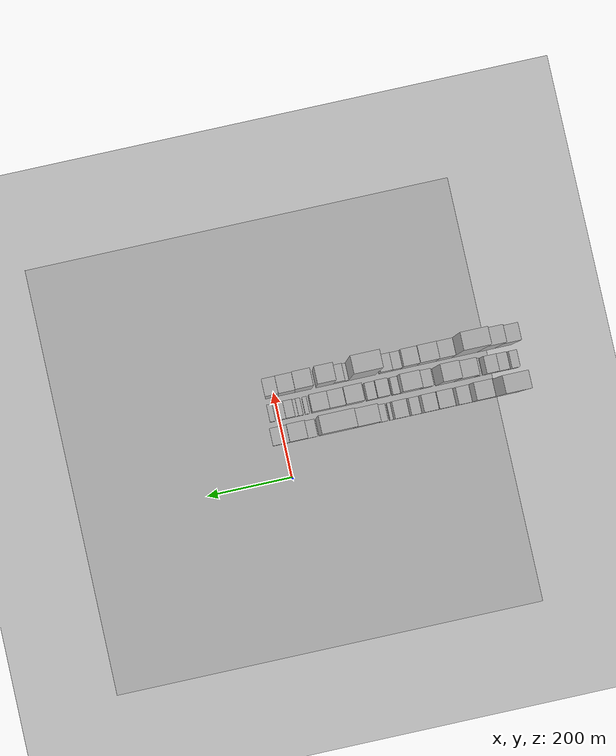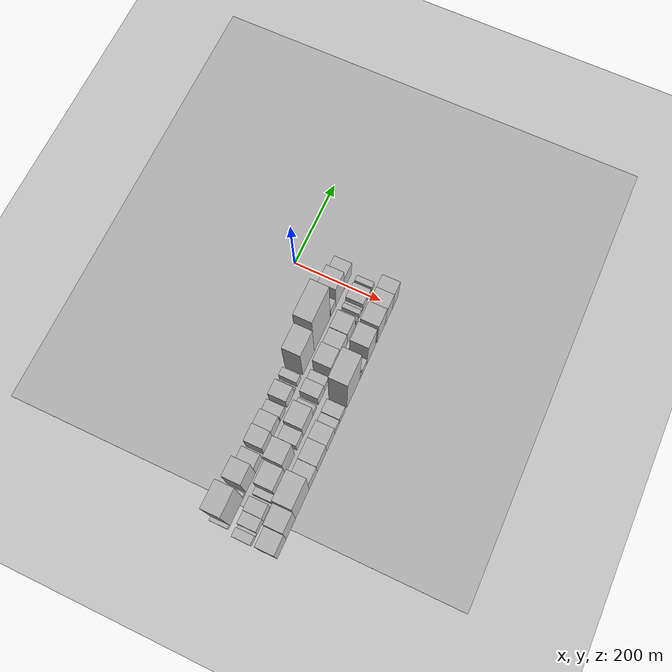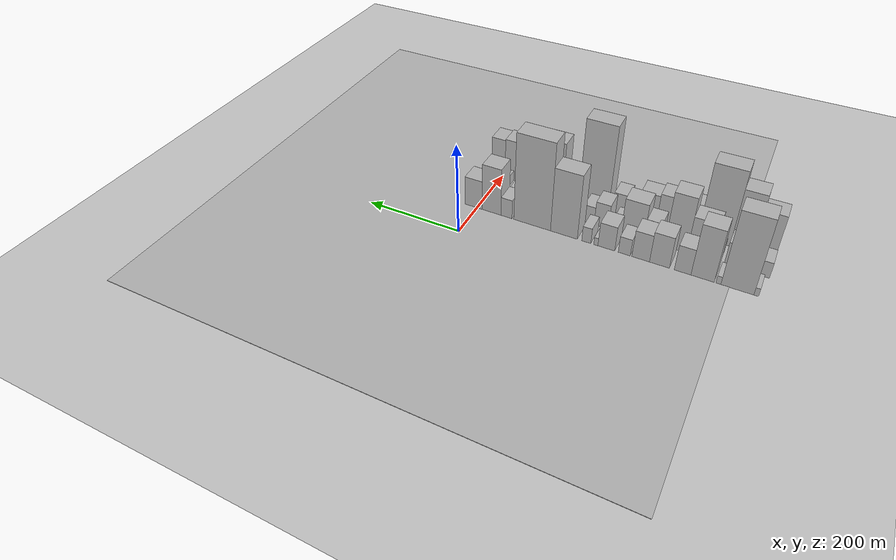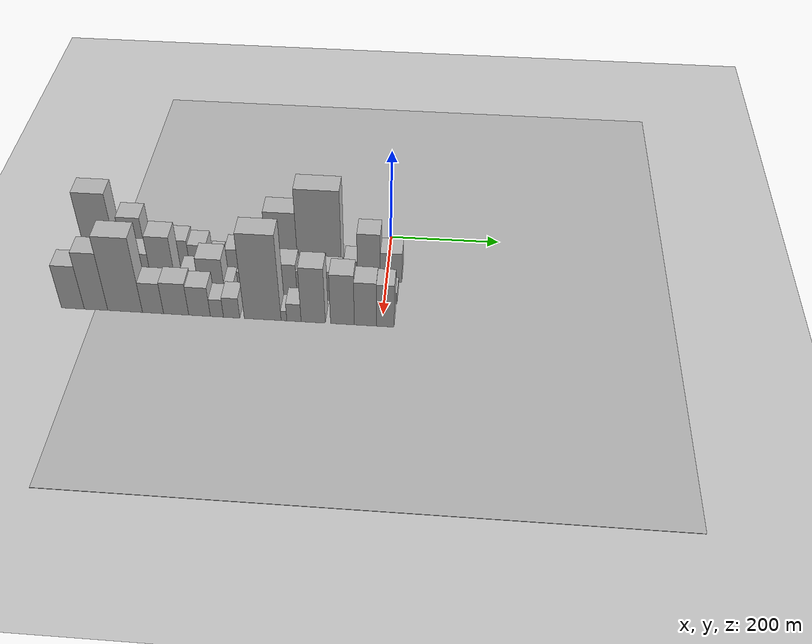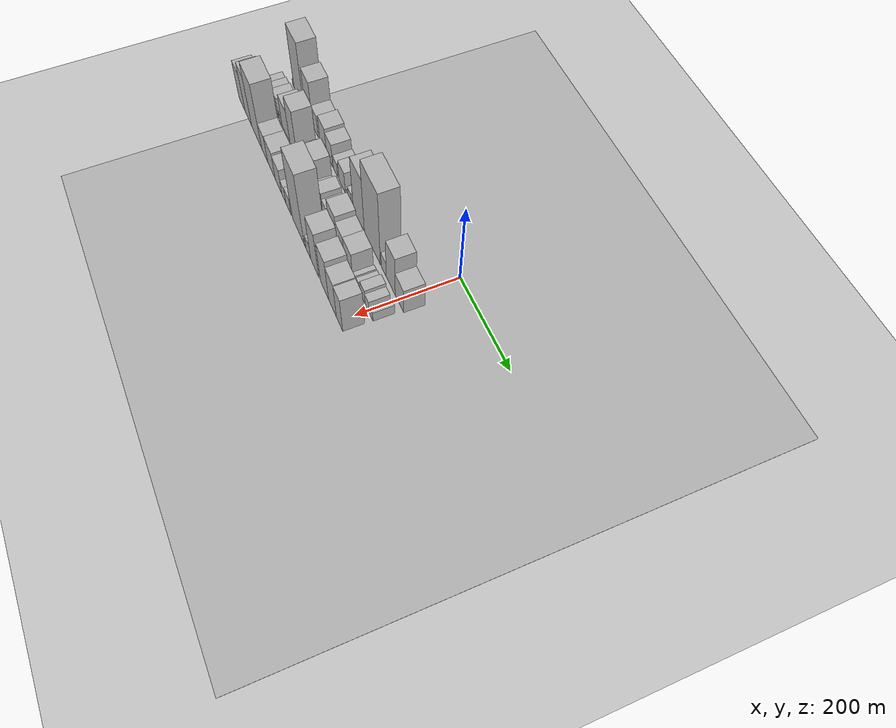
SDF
<sdf version="1.6">
 <world name="default">
  <include><name>ground_plane_1</name><uri>model://HANNAS_ground_plane</uri></include>
  <include>
   <name>ground_plane_2</name>
   <uri>model://HANNAS_ground_plane</uri>
   <pose>100 0 0  0 0 0</pose>
  </include>
  <model name="building_1">
   <static>1</static>
   <pose>100.0000 -546.8630 0 0.000000 0.000000 0.000000</pose>
   <link name="link">
    <pose>0 0 9.00 0 0 0</pose>
    <collision name="collision"><geometry><box><size>40.0000 8.2741 18.0000</size></box></geometry></collision>
    <visual name="visual">
     <cast_shadows>0</cast_shadows>
     <geometry><box><size>40.0000 8.2741 18.0000</size></box></geometry>
     <material>
      <script>
       <uri>model://HANNAS_wall/materials/scripts</uri>
       <uri>model://HANNAS_wall/materials/textures</uri>
       <name>vrc/HANNAS_wall</name>
      </script>
     </material>
    </visual>
   </link>
  </model>
  <model name="building_2">
   <static>1</static>
   <pose>100.0000 -513.9525 0 0.000000 0.000000 0.000000</pose>
   <link name="link">
    <pose>0 0 85.50 0 0 0</pose>
    <collision name="collision"><geometry><box><size>40.0000 57.5469 171.0000</size></box></geometry></collision>
    <visual name="visual">
     <cast_shadows>0</cast_shadows>
     <geometry><box><size>40.0000 57.5469 171.0000</size></box></geometry>
     <material>
      <script>
       <uri>model://HANNAS_wall/materials/scripts</uri>
       <uri>model://HANNAS_wall/materials/textures</uri>
       <name>vrc/HANNAS_wall</name>
      </script>
     </material>
    </visual>
   </link>
  </model>
  <model name="building_3">
   <static>1</static>
   <pose>100.0000 -480.7667 0 0.000000 0.000000 0.000000</pose>
   <link name="link">
    <pose>0 0 9.00 0 0 0</pose>
    <collision name="collision"><geometry><box><size>40.0000 8.8247 18.0000</size></box></geometry></collision>
    <visual name="visual">
     <cast_shadows>0</cast_shadows>
     <geometry><box><size>40.0000 8.8247 18.0000</size></box></geometry>
     <material>
      <script>
       <uri>model://HANNAS_wall/materials/scripts</uri>
       <uri>model://HANNAS_wall/materials/textures</uri>
       <name>vrc/HANNAS_wall</name>
      </script>
     </material>
    </visual>
   </link>
  </model>
  <model name="building_4">
   <static>1</static>
   <pose>100.0000 -452.3800 0 0.000000 0.000000 0.000000</pose>
   <link name="link">
    <pose>0 0 60.00 0 0 0</pose>
    <collision name="collision"><geometry><box><size>40.0000 41.9488 120.0000</size></box></geometry></collision>
    <visual name="visual">
     <cast_shadows>0</cast_shadows>
     <geometry><box><size>40.0000 41.9488 120.0000</size></box></geometry>
     <material>
      <script>
       <uri>model://HANNAS_wall/materials/scripts</uri>
       <uri>model://HANNAS_wall/materials/textures</uri>
       <name>vrc/HANNAS_wall</name>
      </script>
     </material>
    </visual>
   </link>
  </model>
  <model name="building_5">
   <static>1</static>
   <pose>100.0000 -416.2095 0 0.000000 0.000000 0.000000</pose>
   <link name="link">
    <pose>0 0 30.00 0 0 0</pose>
    <collision name="collision"><geometry><box><size>40.0000 30.3921 60.0000</size></box></geometry></collision>
    <visual name="visual">
     <cast_shadows>0</cast_shadows>
     <geometry><box><size>40.0000 30.3921 60.0000</size></box></geometry>
     <material>
      <script>
       <uri>model://HANNAS_wall/materials/scripts</uri>
       <uri>model://HANNAS_wall/materials/textures</uri>
       <name>vrc/HANNAS_wall</name>
      </script>
     </material>
    </visual>
   </link>
  </model>
  <model name="building_6">
   <static>1</static>
   <pose>100.0000 -373.3423 0 0.000000 0.000000 0.000000</pose>
   <link name="link">
    <pose>0 0 36.00 0 0 0</pose>
    <collision name="collision"><geometry><box><size>40.0000 37.3423 72.0000</size></box></geometry></collision>
    <visual name="visual">
     <cast_shadows>0</cast_shadows>
     <geometry><box><size>40.0000 37.3423 72.0000</size></box></geometry>
     <material>
      <script>
       <uri>model://HANNAS_wall/materials/scripts</uri>
       <uri>model://HANNAS_wall/materials/textures</uri>
       <name>vrc/HANNAS_wall</name>
      </script>
     </material>
    </visual>
   </link>
  </model>
  <model name="building_7">
   <static>1</static>
   <pose>100.0000 -337.8517 0 0.000000 0.000000 0.000000</pose>
   <link name="link">
    <pose>0 0 31.50 0 0 0</pose>
    <collision name="collision"><geometry><box><size>40.0000 33.6390 63.0000</size></box></geometry></collision>
    <visual name="visual">
     <cast_shadows>0</cast_shadows>
     <geometry><box><size>40.0000 33.6390 63.0000</size></box></geometry>
     <material>
      <script>
       <uri>model://HANNAS_wall/materials/scripts</uri>
       <uri>model://HANNAS_wall/materials/textures</uri>
       <name>vrc/HANNAS_wall</name>
      </script>
     </material>
    </visual>
   </link>
  </model>
  <model name="building_8">
   <static>1</static>
   <pose>100.0000 -306.4036 0 0.000000 0.000000 0.000000</pose>
   <link name="link">
    <pose>0 0 19.50 0 0 0</pose>
    <collision name="collision"><geometry><box><size>40.0000 23.2571 39.0000</size></box></geometry></collision>
    <visual name="visual">
     <cast_shadows>0</cast_shadows>
     <geometry><box><size>40.0000 23.2571 39.0000</size></box></geometry>
     <material>
      <script>
       <uri>model://HANNAS_wall/materials/scripts</uri>
       <uri>model://HANNAS_wall/materials/textures</uri>
       <name>vrc/HANNAS_wall</name>
      </script>
     </material>
    </visual>
   </link>
  </model>
  <model name="building_9">
   <static>1</static>
   <pose>100.0000 -271.2028 0 0.000000 0.000000 0.000000</pose>
   <link name="link">
    <pose>0 0 28.50 0 0 0</pose>
    <collision name="collision"><geometry><box><size>40.0000 33.1445 57.0000</size></box></geometry></collision>
    <visual name="visual">
     <cast_shadows>0</cast_shadows>
     <geometry><box><size>40.0000 33.1445 57.0000</size></box></geometry>
     <material>
      <script>
       <uri>model://HANNAS_wall/materials/scripts</uri>
       <uri>model://HANNAS_wall/materials/textures</uri>
       <name>vrc/HANNAS_wall</name>
      </script>
     </material>
    </visual>
   </link>
  </model>
  <model name="building_10">
   <static>1</static>
   <pose>100.0000 -250.5992 0 0.000000 0.000000 0.000000</pose>
   <link name="link">
    <pose>0 0 9.00 0 0 0</pose>
    <collision name="collision"><geometry><box><size>40.0000 8.0627 18.0000</size></box></geometry></collision>
    <visual name="visual">
     <cast_shadows>0</cast_shadows>
     <geometry><box><size>40.0000 8.0627 18.0000</size></box></geometry>
     <material>
      <script>
       <uri>model://HANNAS_wall/materials/scripts</uri>
       <uri>model://HANNAS_wall/materials/textures</uri>
       <name>vrc/HANNAS_wall</name>
      </script>
     </material>
    </visual>
   </link>
  </model>
  <model name="building_11">
   <static>1</static>
   <pose>100.0000 -231.4067 0 0.000000 0.000000 0.000000</pose>
   <link name="link">
    <pose>0 0 18.00 0 0 0</pose>
    <collision name="collision"><geometry><box><size>40.0000 18.3222 36.0000</size></box></geometry></collision>
    <visual name="visual">
     <cast_shadows>0</cast_shadows>
     <geometry><box><size>40.0000 18.3222 36.0000</size></box></geometry>
     <material>
      <script>
       <uri>model://HANNAS_wall/materials/scripts</uri>
       <uri>model://HANNAS_wall/materials/textures</uri>
       <name>vrc/HANNAS_wall</name>
      </script>
     </material>
    </visual>
   </link>
  </model>
  <model name="building_12">
   <static>1</static>
   <pose>100.0000 -185.6500 0 0.000000 0.000000 0.000000</pose>
   <link name="link">
    <pose>0 0 75.00 0 0 0</pose>
    <collision name="collision"><geometry><box><size>40.0000 55.1913 150.0000</size></box></geometry></collision>
    <visual name="visual">
     <cast_shadows>0</cast_shadows>
     <geometry><box><size>40.0000 55.1913 150.0000</size></box></geometry>
     <material>
      <script>
       <uri>model://HANNAS_wall/materials/scripts</uri>
       <uri>model://HANNAS_wall/materials/textures</uri>
       <name>vrc/HANNAS_wall</name>
      </script>
     </material>
    </visual>
   </link>
  </model>
  <model name="building_13">
   <static>1</static>
   <pose>100.0000 -119.1153 0 0.000000 0.000000 0.000000</pose>
   <link name="link">
    <pose>0 0 102.00 0 0 0</pose>
    <collision name="collision"><geometry><box><size>40.0000 77.8781 204.0000</size></box></geometry></collision>
    <visual name="visual">
     <cast_shadows>0</cast_shadows>
     <geometry><box><size>40.0000 77.8781 204.0000</size></box></geometry>
     <material>
      <script>
       <uri>model://HANNAS_wall/materials/scripts</uri>
       <uri>model://HANNAS_wall/materials/textures</uri>
       <name>vrc/HANNAS_wall</name>
      </script>
     </material>
    </visual>
   </link>
  </model>
  <model name="building_14">
   <static>1</static>
   <pose>100.0000 -64.1323 0 0.000000 0.000000 0.000000</pose>
   <link name="link">
    <pose>0 0 22.50 0 0 0</pose>
    <collision name="collision"><geometry><box><size>40.0000 24.0878 45.0000</size></box></geometry></collision>
    <visual name="visual">
     <cast_shadows>0</cast_shadows>
     <geometry><box><size>40.0000 24.0878 45.0000</size></box></geometry>
     <material>
      <script>
       <uri>model://HANNAS_wall/materials/scripts</uri>
       <uri>model://HANNAS_wall/materials/textures</uri>
       <name>vrc/HANNAS_wall</name>
      </script>
     </material>
    </visual>
   </link>
  </model>
  <model name="building_15">
   <static>1</static>
   <pose>100.0000 -31.6384 0 0.000000 0.000000 0.000000</pose>
   <link name="link">
    <pose>0 0 55.50 0 0 0</pose>
    <collision name="collision"><geometry><box><size>40.0000 40.9000 111.0000</size></box></geometry></collision>
    <visual name="visual">
     <cast_shadows>0</cast_shadows>
     <geometry><box><size>40.0000 40.9000 111.0000</size></box></geometry>
     <material>
      <script>
       <uri>model://HANNAS_wall/materials/scripts</uri>
       <uri>model://HANNAS_wall/materials/textures</uri>
       <name>vrc/HANNAS_wall</name>
      </script>
     </material>
    </visual>
   </link>
  </model>
  <model name="building_16">
   <static>1</static>
   <pose>100.0000 8.0737 0 0.000000 0.000000 0.000000</pose>
   <link name="link">
    <pose>0 0 34.50 0 0 0</pose>
    <collision name="collision"><geometry><box><size>40.0000 38.5243 69.0000</size></box></geometry></collision>
    <visual name="visual">
     <cast_shadows>0</cast_shadows>
     <geometry><box><size>40.0000 38.5243 69.0000</size></box></geometry>
     <material>
      <script>
       <uri>model://HANNAS_wall/materials/scripts</uri>
       <uri>model://HANNAS_wall/materials/textures</uri>
       <name>vrc/HANNAS_wall</name>
      </script>
     </material>
    </visual>
   </link>
  </model>
  <model name="building_33">
   <static>1</static>
   <pose>155.0000 -550.4783 0 0.000000 0.000000 0.000000</pose>
   <link name="link">
    <pose>0 0 18.00 0 0 0</pose>
    <collision name="collision"><geometry><box><size>40.0000 19.0434 36.0000</size></box></geometry></collision>
    <visual name="visual">
     <cast_shadows>0</cast_shadows>
     <geometry><box><size>40.0000 19.0434 36.0000</size></box></geometry>
     <material>
      <script>
       <uri>model://HANNAS_wall/materials/scripts</uri>
       <uri>model://HANNAS_wall/materials/textures</uri>
       <name>vrc/HANNAS_wall</name>
      </script>
     </material>
    </visual>
   </link>
  </model>
  <model name="building_34">
   <static>1</static>
   <pose>155.0000 -537.7247 0 0.000000 0.000000 0.000000</pose>
   <link name="link">
    <pose>0 0 7.50 0 0 0</pose>
    <collision name="collision"><geometry><box><size>40.0000 6.4638 15.0000</size></box></geometry></collision>
    <visual name="visual">
     <cast_shadows>0</cast_shadows>
     <geometry><box><size>40.0000 6.4638 15.0000</size></box></geometry>
     <material>
      <script>
       <uri>model://HANNAS_wall/materials/scripts</uri>
       <uri>model://HANNAS_wall/materials/textures</uri>
       <name>vrc/HANNAS_wall</name>
      </script>
     </material>
    </visual>
   </link>
  </model>
  <model name="building_35">
   <static>1</static>
   <pose>155.0000 -521.3040 0 0.000000 0.000000 0.000000</pose>
   <link name="link">
    <pose>0 0 22.50 0 0 0</pose>
    <collision name="collision"><geometry><box><size>40.0000 26.3776 45.0000</size></box></geometry></collision>
    <visual name="visual">
     <cast_shadows>0</cast_shadows>
     <geometry><box><size>40.0000 26.3776 45.0000</size></box></geometry>
     <material>
      <script>
       <uri>model://HANNAS_wall/materials/scripts</uri>
       <uri>model://HANNAS_wall/materials/textures</uri>
       <name>vrc/HANNAS_wall</name>
      </script>
     </material>
    </visual>
   </link>
  </model>
  <model name="building_36">
   <static>1</static>
   <pose>155.0000 -493.5138 0 0.000000 0.000000 0.000000</pose>
   <link name="link">
    <pose>0 0 27.00 0 0 0</pose>
    <collision name="collision"><geometry><box><size>40.0000 29.2029 54.0000</size></box></geometry></collision>
    <visual name="visual">
     <cast_shadows>0</cast_shadows>
     <geometry><box><size>40.0000 29.2029 54.0000</size></box></geometry>
     <material>
      <script>
       <uri>model://HANNAS_wall/materials/scripts</uri>
       <uri>model://HANNAS_wall/materials/textures</uri>
       <name>vrc/HANNAS_wall</name>
      </script>
     </material>
    </visual>
   </link>
  </model>
  <model name="building_37">
   <static>1</static>
   <pose>155.0000 -464.1807 0 0.000000 0.000000 0.000000</pose>
   <link name="link">
    <pose>0 0 15.00 0 0 0</pose>
    <collision name="collision"><geometry><box><size>40.0000 15.4633 30.0000</size></box></geometry></collision>
    <visual name="visual">
     <cast_shadows>0</cast_shadows>
     <geometry><box><size>40.0000 15.4633 30.0000</size></box></geometry>
     <material>
      <script>
       <uri>model://HANNAS_wall/materials/scripts</uri>
       <uri>model://HANNAS_wall/materials/textures</uri>
       <name>vrc/HANNAS_wall</name>
      </script>
     </material>
    </visual>
   </link>
  </model>
  <model name="building_38">
   <static>1</static>
   <pose>155.0000 -433.0651 0 0.000000 0.000000 0.000000</pose>
   <link name="link">
    <pose>0 0 43.50 0 0 0</pose>
    <collision name="collision"><geometry><box><size>40.0000 46.7678 87.0000</size></box></geometry></collision>
    <visual name="visual">
     <cast_shadows>0</cast_shadows>
     <geometry><box><size>40.0000 46.7678 87.0000</size></box></geometry>
     <material>
      <script>
       <uri>model://HANNAS_wall/materials/scripts</uri>
       <uri>model://HANNAS_wall/materials/textures</uri>
       <name>vrc/HANNAS_wall</name>
      </script>
     </material>
    </visual>
   </link>
  </model>
  <model name="building_39">
   <static>1</static>
   <pose>155.0000 -388.4010 0 0.000000 0.000000 0.000000</pose>
   <link name="link">
    <pose>0 0 64.50 0 0 0</pose>
    <collision name="collision"><geometry><box><size>40.0000 42.5605 129.0000</size></box></geometry></collision>
    <visual name="visual">
     <cast_shadows>0</cast_shadows>
     <geometry><box><size>40.0000 42.5605 129.0000</size></box></geometry>
     <material>
      <script>
       <uri>model://HANNAS_wall/materials/scripts</uri>
       <uri>model://HANNAS_wall/materials/textures</uri>
       <name>vrc/HANNAS_wall</name>
      </script>
     </material>
    </visual>
   </link>
  </model>
  <model name="building_40">
   <static>1</static>
   <pose>155.0000 -342.2201 0 0.000000 0.000000 0.000000</pose>
   <link name="link">
    <pose>0 0 25.50 0 0 0</pose>
    <collision name="collision"><geometry><box><size>40.0000 29.8011 51.0000</size></box></geometry></collision>
    <visual name="visual">
     <cast_shadows>0</cast_shadows>
     <geometry><box><size>40.0000 29.8011 51.0000</size></box></geometry>
     <material>
      <script>
       <uri>model://HANNAS_wall/materials/scripts</uri>
       <uri>model://HANNAS_wall/materials/textures</uri>
       <name>vrc/HANNAS_wall</name>
      </script>
     </material>
    </visual>
   </link>
  </model>
  <model name="building_41">
   <static>1</static>
   <pose>155.0000 -304.5491 0 0.000000 0.000000 0.000000</pose>
   <link name="link">
    <pose>0 0 42.00 0 0 0</pose>
    <collision name="collision"><geometry><box><size>40.0000 45.5410 84.0000</size></box></geometry></collision>
    <visual name="visual">
     <cast_shadows>0</cast_shadows>
     <geometry><box><size>40.0000 45.5410 84.0000</size></box></geometry>
     <material>
      <script>
       <uri>model://HANNAS_wall/materials/scripts</uri>
       <uri>model://HANNAS_wall/materials/textures</uri>
       <name>vrc/HANNAS_wall</name>
      </script>
     </material>
    </visual>
   </link>
  </model>
  <model name="building_42">
   <static>1</static>
   <pose>155.0000 -273.1026 0 0.000000 0.000000 0.000000</pose>
   <link name="link">
    <pose>0 0 15.00 0 0 0</pose>
    <collision name="collision"><geometry><box><size>40.0000 17.3521 30.0000</size></box></geometry></collision>
    <visual name="visual">
     <cast_shadows>0</cast_shadows>
     <geometry><box><size>40.0000 17.3521 30.0000</size></box></geometry>
     <material>
      <script>
       <uri>model://HANNAS_wall/materials/scripts</uri>
       <uri>model://HANNAS_wall/materials/textures</uri>
       <name>vrc/HANNAS_wall</name>
      </script>
     </material>
    </visual>
   </link>
  </model>
  <model name="building_43">
   <static>1</static>
   <pose>155.0000 -241.7620 0 0.000000 0.000000 0.000000</pose>
   <link name="link">
    <pose>0 0 28.50 0 0 0</pose>
    <collision name="collision"><geometry><box><size>40.0000 29.3291 57.0000</size></box></geometry></collision>
    <visual name="visual">
     <cast_shadows>0</cast_shadows>
     <geometry><box><size>40.0000 29.3291 57.0000</size></box></geometry>
     <material>
      <script>
       <uri>model://HANNAS_wall/materials/scripts</uri>
       <uri>model://HANNAS_wall/materials/textures</uri>
       <name>vrc/HANNAS_wall</name>
      </script>
     </material>
    </visual>
   </link>
  </model>
  <model name="building_44">
   <static>1</static>
   <pose>155.0000 -215.5495 0 0.000000 0.000000 0.000000</pose>
   <link name="link">
    <pose>0 0 21.00 0 0 0</pose>
    <collision name="collision"><geometry><box><size>40.0000 23.0959 42.0000</size></box></geometry></collision>
    <visual name="visual">
     <cast_shadows>0</cast_shadows>
     <geometry><box><size>40.0000 23.0959 42.0000</size></box></geometry>
     <material>
      <script>
       <uri>model://HANNAS_wall/materials/scripts</uri>
       <uri>model://HANNAS_wall/materials/textures</uri>
       <name>vrc/HANNAS_wall</name>
      </script>
     </material>
    </visual>
   </link>
  </model>
  <model name="building_45">
   <static>1</static>
   <pose>155.0000 -173.9169 0 0.000000 0.000000 0.000000</pose>
   <link name="link">
    <pose>0 0 40.50 0 0 0</pose>
    <collision name="collision"><geometry><box><size>40.0000 42.1693 81.0000</size></box></geometry></collision>
    <visual name="visual">
     <cast_shadows>0</cast_shadows>
     <geometry><box><size>40.0000 42.1693 81.0000</size></box></geometry>
     <material>
      <script>
       <uri>model://HANNAS_wall/materials/scripts</uri>
       <uri>model://HANNAS_wall/materials/textures</uri>
       <name>vrc/HANNAS_wall</name>
      </script>
     </material>
    </visual>
   </link>
  </model>
  <model name="building_46">
   <static>1</static>
   <pose>155.0000 -134.1837 0 0.000000 0.000000 0.000000</pose>
   <link name="link">
    <pose>0 0 33.00 0 0 0</pose>
    <collision name="collision"><geometry><box><size>40.0000 37.2972 66.0000</size></box></geometry></collision>
    <visual name="visual">
     <cast_shadows>0</cast_shadows>
     <geometry><box><size>40.0000 37.2972 66.0000</size></box></geometry>
     <material>
      <script>
       <uri>model://HANNAS_wall/materials/scripts</uri>
       <uri>model://HANNAS_wall/materials/textures</uri>
       <name>vrc/HANNAS_wall</name>
      </script>
     </material>
    </visual>
   </link>
  </model>
  <model name="building_47">
   <static>1</static>
   <pose>155.0000 -95.3293 0 0.000000 0.000000 0.000000</pose>
   <link name="link">
    <pose>0 0 34.50 0 0 0</pose>
    <collision name="collision"><geometry><box><size>40.0000 40.4116 69.0000</size></box></geometry></collision>
    <visual name="visual">
     <cast_shadows>0</cast_shadows>
     <geometry><box><size>40.0000 40.4116 69.0000</size></box></geometry>
     <material>
      <script>
       <uri>model://HANNAS_wall/materials/scripts</uri>
       <uri>model://HANNAS_wall/materials/textures</uri>
       <name>vrc/HANNAS_wall</name>
      </script>
     </material>
    </visual>
   </link>
  </model>
  <model name="building_48">
   <static>1</static>
   <pose>155.0000 -65.0605 0 0.000000 0.000000 0.000000</pose>
   <link name="link">
    <pose>0 0 12.00 0 0 0</pose>
    <collision name="collision"><geometry><box><size>40.0000 10.1261 24.0000</size></box></geometry></collision>
    <visual name="visual">
     <cast_shadows>0</cast_shadows>
     <geometry><box><size>40.0000 10.1261 24.0000</size></box></geometry>
     <material>
      <script>
       <uri>model://HANNAS_wall/materials/scripts</uri>
       <uri>model://HANNAS_wall/materials/textures</uri>
       <name>vrc/HANNAS_wall</name>
      </script>
     </material>
    </visual>
   </link>
  </model>
  <model name="building_49">
   <static>1</static>
   <pose>155.0000 -49.5708 0 0.000000 0.000000 0.000000</pose>
   <link name="link">
    <pose>0 0 13.50 0 0 0</pose>
    <collision name="collision"><geometry><box><size>40.0000 10.8533 27.0000</size></box></geometry></collision>
    <visual name="visual">
     <cast_shadows>0</cast_shadows>
     <geometry><box><size>40.0000 10.8533 27.0000</size></box></geometry>
     <material>
      <script>
       <uri>model://HANNAS_wall/materials/scripts</uri>
       <uri>model://HANNAS_wall/materials/textures</uri>
       <name>vrc/HANNAS_wall</name>
      </script>
     </material>
    </visual>
   </link>
  </model>
  <model name="building_50">
   <static>1</static>
   <pose>155.0000 -40.2125 0 0.000000 0.000000 0.000000</pose>
   <link name="link">
    <pose>0 0 9.00 0 0 0</pose>
    <collision name="collision"><geometry><box><size>40.0000 7.8632 18.0000</size></box></geometry></collision>
    <visual name="visual">
     <cast_shadows>0</cast_shadows>
     <geometry><box><size>40.0000 7.8632 18.0000</size></box></geometry>
     <material>
      <script>
       <uri>model://HANNAS_wall/materials/scripts</uri>
       <uri>model://HANNAS_wall/materials/textures</uri>
       <name>vrc/HANNAS_wall</name>
      </script>
     </material>
    </visual>
   </link>
  </model>
  <model name="building_51">
   <static>1</static>
   <pose>155.0000 -25.5959 0 0.000000 0.000000 0.000000</pose>
   <link name="link">
    <pose>0 0 21.00 0 0 0</pose>
    <collision name="collision"><geometry><box><size>40.0000 21.3701 42.0000</size></box></geometry></collision>
    <visual name="visual">
     <cast_shadows>0</cast_shadows>
     <geometry><box><size>40.0000 21.3701 42.0000</size></box></geometry>
     <material>
      <script>
       <uri>model://HANNAS_wall/materials/scripts</uri>
       <uri>model://HANNAS_wall/materials/textures</uri>
       <name>vrc/HANNAS_wall</name>
      </script>
     </material>
    </visual>
   </link>
  </model>
  <model name="building_52">
   <static>1</static>
   <pose>155.0000 -5.6852 0 0.000000 0.000000 0.000000</pose>
   <link name="link">
    <pose>0 0 16.50 0 0 0</pose>
    <collision name="collision"><geometry><box><size>40.0000 18.4512 33.0000</size></box></geometry></collision>
    <visual name="visual">
     <cast_shadows>0</cast_shadows>
     <geometry><box><size>40.0000 18.4512 33.0000</size></box></geometry>
     <material>
      <script>
       <uri>model://HANNAS_wall/materials/scripts</uri>
       <uri>model://HANNAS_wall/materials/textures</uri>
       <name>vrc/HANNAS_wall</name>
      </script>
     </material>
    </visual>
   </link>
  </model>
  <model name="building_53">
   <static>1</static>
   <pose>155.0000 16.0391 0 0.000000 0.000000 0.000000</pose>
   <link name="link">
    <pose>0 0 13.50 0 0 0</pose>
    <collision name="collision"><geometry><box><size>40.0000 12.9974 27.0000</size></box></geometry></collision>
    <visual name="visual">
     <cast_shadows>0</cast_shadows>
     <geometry><box><size>40.0000 12.9974 27.0000</size></box></geometry>
     <material>
      <script>
       <uri>model://HANNAS_wall/materials/scripts</uri>
       <uri>model://HANNAS_wall/materials/textures</uri>
       <name>vrc/HANNAS_wall</name>
      </script>
     </material>
    </visual>
   </link>
  </model>
  <model name="building_74">
   <static>1</static>
   <pose>210.0000 -539.7066 0 0.000000 0.000000 0.000000</pose>
   <link name="link">
    <pose>0 0 51.00 0 0 0</pose>
    <collision name="collision"><geometry><box><size>40.0000 40.5868 102.0000</size></box></geometry></collision>
    <visual name="visual">
     <cast_shadows>0</cast_shadows>
     <geometry><box><size>40.0000 40.5868 102.0000</size></box></geometry>
     <material>
      <script>
       <uri>model://HANNAS_wall/materials/scripts</uri>
       <uri>model://HANNAS_wall/materials/textures</uri>
       <name>vrc/HANNAS_wall</name>
      </script>
     </material>
    </visual>
   </link>
  </model>
  <model name="building_75">
   <static>1</static>
   <pose>210.0000 -498.5687 0 0.000000 0.000000 0.000000</pose>
   <link name="link">
    <pose>0 0 67.50 0 0 0</pose>
    <collision name="collision"><geometry><box><size>40.0000 41.6890 135.0000</size></box></geometry></collision>
    <visual name="visual">
     <cast_shadows>0</cast_shadows>
     <geometry><box><size>40.0000 41.6890 135.0000</size></box></geometry>
     <material>
      <script>
       <uri>model://HANNAS_wall/materials/scripts</uri>
       <uri>model://HANNAS_wall/materials/textures</uri>
       <name>vrc/HANNAS_wall</name>
      </script>
     </material>
    </visual>
   </link>
  </model>
  <model name="building_76">
   <static>1</static>
   <pose>210.0000 -447.1206 0 0.000000 0.000000 0.000000</pose>
   <link name="link">
    <pose>0 0 87.00 0 0 0</pose>
    <collision name="collision"><geometry><box><size>40.0000 61.2072 174.0000</size></box></geometry></collision>
    <visual name="visual">
     <cast_shadows>0</cast_shadows>
     <geometry><box><size>40.0000 61.2072 174.0000</size></box></geometry>
     <material>
      <script>
       <uri>model://HANNAS_wall/materials/scripts</uri>
       <uri>model://HANNAS_wall/materials/textures</uri>
       <name>vrc/HANNAS_wall</name>
      </script>
     </material>
    </visual>
   </link>
  </model>
  <model name="building_77">
   <static>1</static>
   <pose>210.0000 -397.9547 0 0.000000 0.000000 0.000000</pose>
   <link name="link">
    <pose>0 0 36.00 0 0 0</pose>
    <collision name="collision"><geometry><box><size>40.0000 37.1246 72.0000</size></box></geometry></collision>
    <visual name="visual">
     <cast_shadows>0</cast_shadows>
     <geometry><box><size>40.0000 37.1246 72.0000</size></box></geometry>
     <material>
      <script>
       <uri>model://HANNAS_wall/materials/scripts</uri>
       <uri>model://HANNAS_wall/materials/textures</uri>
       <name>vrc/HANNAS_wall</name>
      </script>
     </material>
    </visual>
   </link>
  </model>
  <model name="building_78">
   <static>1</static>
   <pose>210.0000 -357.2727 0 0.000000 0.000000 0.000000</pose>
   <link name="link">
    <pose>0 0 37.50 0 0 0</pose>
    <collision name="collision"><geometry><box><size>40.0000 44.2394 75.0000</size></box></geometry></collision>
    <visual name="visual">
     <cast_shadows>0</cast_shadows>
     <geometry><box><size>40.0000 44.2394 75.0000</size></box></geometry>
     <material>
      <script>
       <uri>model://HANNAS_wall/materials/scripts</uri>
       <uri>model://HANNAS_wall/materials/textures</uri>
       <name>vrc/HANNAS_wall</name>
      </script>
     </material>
    </visual>
   </link>
  </model>
  <model name="building_79">
   <static>1</static>
   <pose>210.0000 -316.2236 0 0.000000 0.000000 0.000000</pose>
   <link name="link">
    <pose>0 0 34.50 0 0 0</pose>
    <collision name="collision"><geometry><box><size>40.0000 37.8588 69.0000</size></box></geometry></collision>
    <visual name="visual">
     <cast_shadows>0</cast_shadows>
     <geometry><box><size>40.0000 37.8588 69.0000</size></box></geometry>
     <material>
      <script>
       <uri>model://HANNAS_wall/materials/scripts</uri>
       <uri>model://HANNAS_wall/materials/textures</uri>
       <name>vrc/HANNAS_wall</name>
      </script>
     </material>
    </visual>
   </link>
  </model>
  <model name="building_80">
   <static>1</static>
   <pose>210.0000 -285.8151 0 0.000000 0.000000 0.000000</pose>
   <link name="link">
    <pose>0 0 21.00 0 0 0</pose>
    <collision name="collision"><geometry><box><size>40.0000 22.9582 42.0000</size></box></geometry></collision>
    <visual name="visual">
     <cast_shadows>0</cast_shadows>
     <geometry><box><size>40.0000 22.9582 42.0000</size></box></geometry>
     <material>
      <script>
       <uri>model://HANNAS_wall/materials/scripts</uri>
       <uri>model://HANNAS_wall/materials/textures</uri>
       <name>vrc/HANNAS_wall</name>
      </script>
     </material>
    </visual>
   </link>
  </model>
  <model name="building_81">
   <static>1</static>
   <pose>210.0000 -260.1177 0 0.000000 0.000000 0.000000</pose>
   <link name="link">
    <pose>0 0 24.00 0 0 0</pose>
    <collision name="collision"><geometry><box><size>40.0000 28.4366 48.0000</size></box></geometry></collision>
    <visual name="visual">
     <cast_shadows>0</cast_shadows>
     <geometry><box><size>40.0000 28.4366 48.0000</size></box></geometry>
     <material>
      <script>
       <uri>model://HANNAS_wall/materials/scripts</uri>
       <uri>model://HANNAS_wall/materials/textures</uri>
       <name>vrc/HANNAS_wall</name>
      </script>
     </material>
    </visual>
   </link>
  </model>
  <model name="building_82">
   <static>1</static>
   <pose>210.0000 -205.8589 0 0.000000 0.000000 0.000000</pose>
   <link name="link">
    <pose>0 0 99.00 0 0 0</pose>
    <collision name="collision"><geometry><box><size>40.0000 64.0809 198.0000</size></box></geometry></collision>
    <visual name="visual">
     <cast_shadows>0</cast_shadows>
     <geometry><box><size>40.0000 64.0809 198.0000</size></box></geometry>
     <material>
      <script>
       <uri>model://HANNAS_wall/materials/scripts</uri>
       <uri>model://HANNAS_wall/materials/textures</uri>
       <name>vrc/HANNAS_wall</name>
      </script>
     </material>
    </visual>
   </link>
  </model>
  <model name="building_83">
   <static>1</static>
   <pose>210.0000 -168.8874 0 0.000000 0.000000 0.000000</pose>
   <link name="link">
    <pose>0 0 12.00 0 0 0</pose>
    <collision name="collision"><geometry><box><size>40.0000 9.8622 24.0000</size></box></geometry></collision>
    <visual name="visual">
     <cast_shadows>0</cast_shadows>
     <geometry><box><size>40.0000 9.8622 24.0000</size></box></geometry>
     <material>
      <script>
       <uri>model://HANNAS_wall/materials/scripts</uri>
       <uri>model://HANNAS_wall/materials/textures</uri>
       <name>vrc/HANNAS_wall</name>
      </script>
     </material>
    </visual>
   </link>
  </model>
  <model name="building_84">
   <static>1</static>
   <pose>210.0000 -151.5203 0 0.000000 0.000000 0.000000</pose>
   <link name="link">
    <pose>0 0 21.00 0 0 0</pose>
    <collision name="collision"><geometry><box><size>40.0000 24.8719 42.0000</size></box></geometry></collision>
    <visual name="visual">
     <cast_shadows>0</cast_shadows>
     <geometry><box><size>40.0000 24.8719 42.0000</size></box></geometry>
     <material>
      <script>
       <uri>model://HANNAS_wall/materials/scripts</uri>
       <uri>model://HANNAS_wall/materials/textures</uri>
       <name>vrc/HANNAS_wall</name>
      </script>
     </material>
    </visual>
   </link>
  </model>
  <model name="building_85">
   <static>1</static>
   <pose>210.0000 -118.1208 0 0.000000 0.000000 0.000000</pose>
   <link name="link">
    <pose>0 0 64.50 0 0 0</pose>
    <collision name="collision"><geometry><box><size>40.0000 41.9269 129.0000</size></box></geometry></collision>
    <visual name="visual">
     <cast_shadows>0</cast_shadows>
     <geometry><box><size>40.0000 41.9269 129.0000</size></box></geometry>
     <material>
      <script>
       <uri>model://HANNAS_wall/materials/scripts</uri>
       <uri>model://HANNAS_wall/materials/textures</uri>
       <name>vrc/HANNAS_wall</name>
      </script>
     </material>
    </visual>
   </link>
  </model>
  <model name="building_86">
   <static>1</static>
   <pose>210.0000 -67.6298 0 0.000000 0.000000 0.000000</pose>
   <link name="link">
    <pose>0 0 58.50 0 0 0</pose>
    <collision name="collision"><geometry><box><size>40.0000 41.0551 117.0000</size></box></geometry></collision>
    <visual name="visual">
     <cast_shadows>0</cast_shadows>
     <geometry><box><size>40.0000 41.0551 117.0000</size></box></geometry>
     <material>
      <script>
       <uri>model://HANNAS_wall/materials/scripts</uri>
       <uri>model://HANNAS_wall/materials/textures</uri>
       <name>vrc/HANNAS_wall</name>
      </script>
     </material>
    </visual>
   </link>
  </model>
  <model name="building_87">
   <static>1</static>
   <pose>210.0000 -28.1743 0 0.000000 0.000000 0.000000</pose>
   <link name="link">
    <pose>0 0 51.00 0 0 0</pose>
    <collision name="collision"><geometry><box><size>40.0000 37.8560 102.0000</size></box></geometry></collision>
    <visual name="visual">
     <cast_shadows>0</cast_shadows>
     <geometry><box><size>40.0000 37.8560 102.0000</size></box></geometry>
     <material>
      <script>
       <uri>model://HANNAS_wall/materials/scripts</uri>
       <uri>model://HANNAS_wall/materials/textures</uri>
       <name>vrc/HANNAS_wall</name>
      </script>
     </material>
    </visual>
   </link>
  </model>
  <model name="building_88">
   <static>1</static>
   <pose>210.0000 5.9602 0 0.000000 0.000000 0.000000</pose>
   <link name="link">
    <pose>0 0 49.50 0 0 0</pose>
    <collision name="collision"><geometry><box><size>40.0000 30.4130 99.0000</size></box></geometry></collision>
    <visual name="visual">
     <cast_shadows>0</cast_shadows>
     <geometry><box><size>40.0000 30.4130 99.0000</size></box></geometry>
     <material>
      <script>
       <uri>model://HANNAS_wall/materials/scripts</uri>
       <uri>model://HANNAS_wall/materials/textures</uri>
       <name>vrc/HANNAS_wall</name>
      </script>
     </material>
    </visual>
   </link>
  </model>
 </world>
</sdf>
